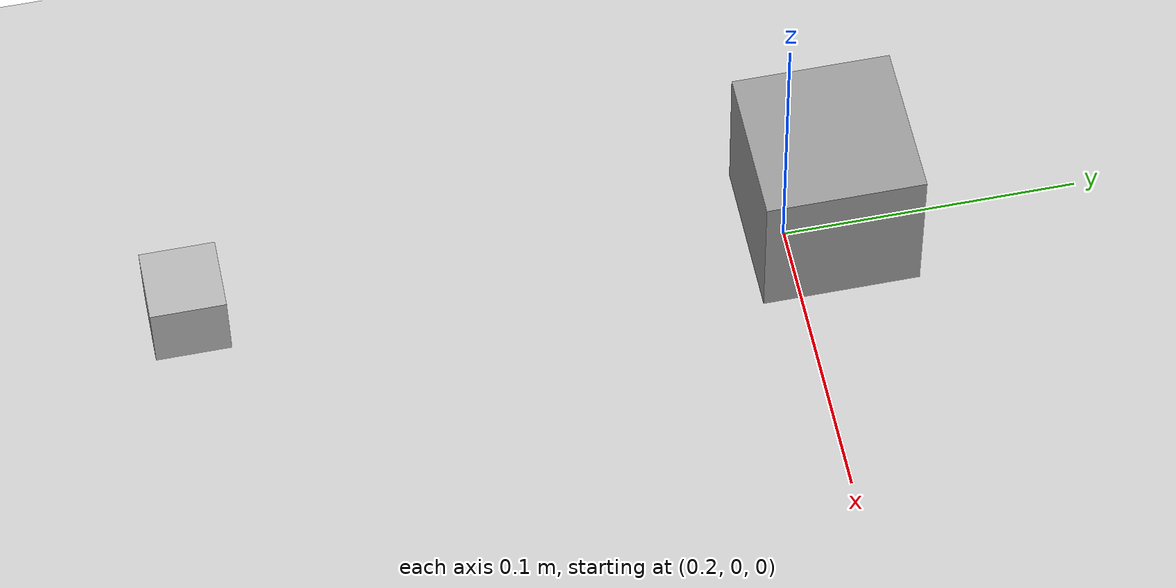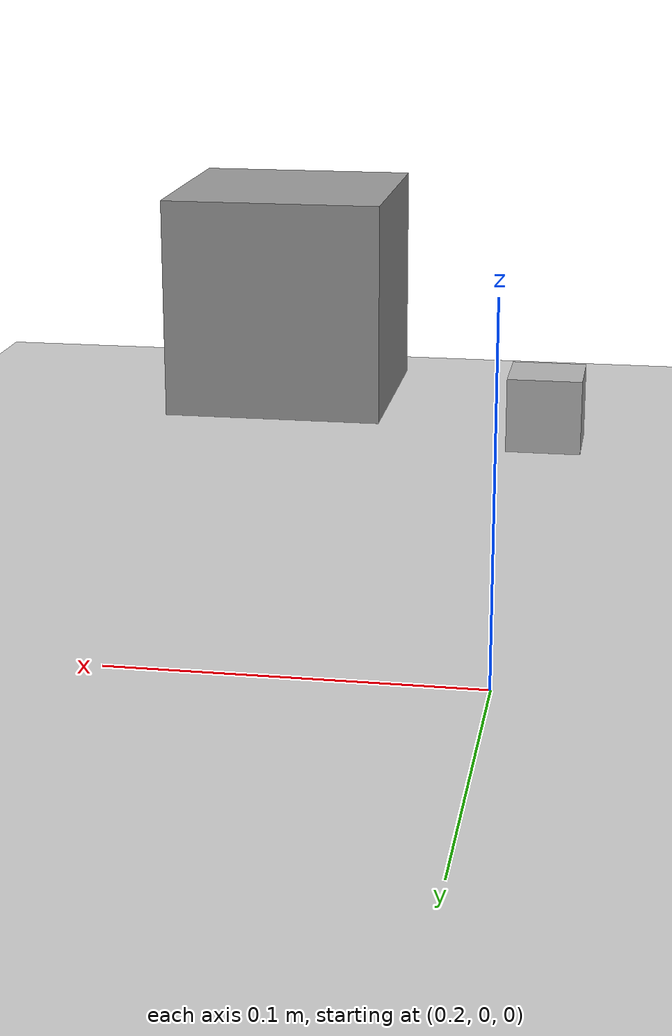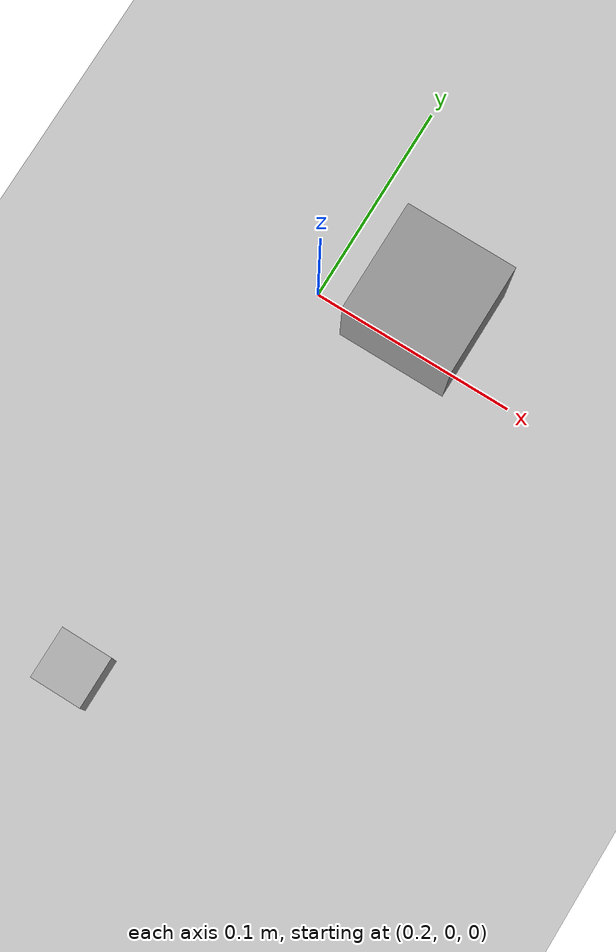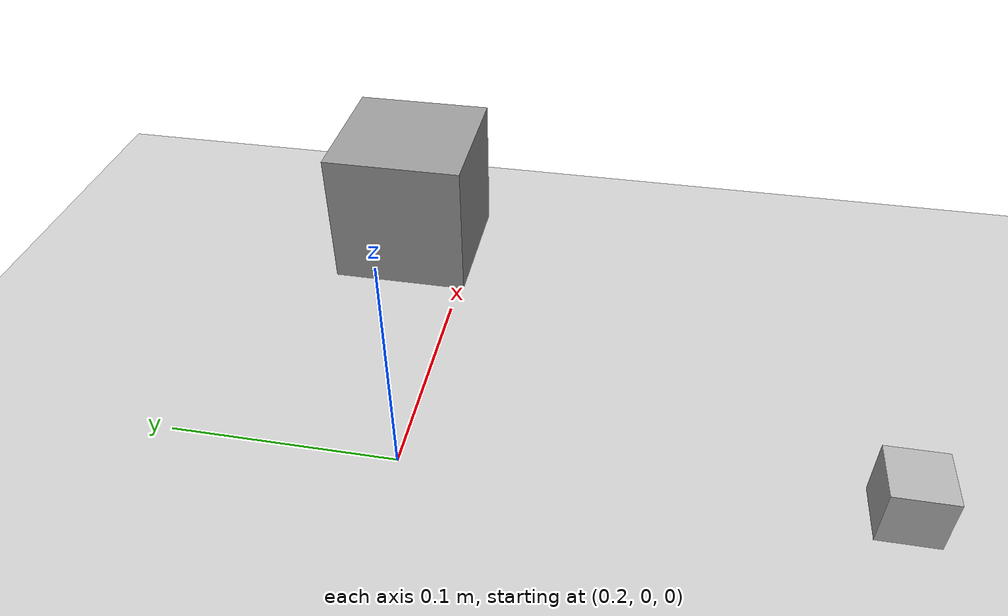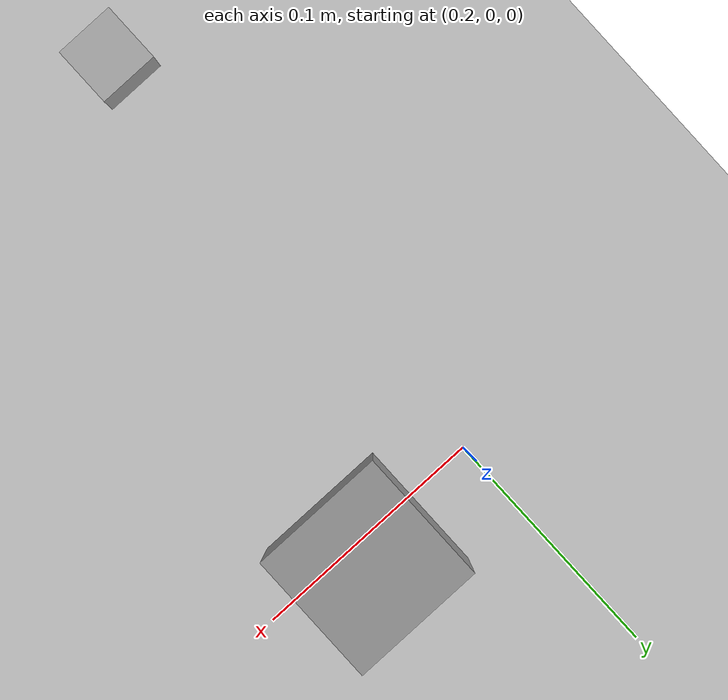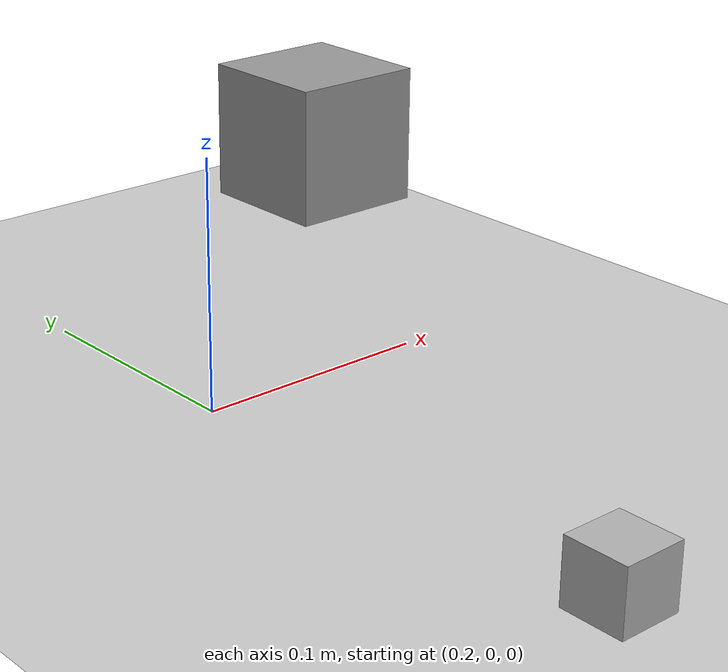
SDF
<sdf version="1.4">
  <world name="default">

    <scene>
      <ambient>0.4 0.4 0.4 1</ambient>
      <background>0.7 0.7 0.7 1</background>
      <shadows>true</shadows>
    </scene>

    <!-- A global light source -->
    <include>
      <uri>model://sun</uri>
    </include>

    <!-- A ground plane -->
    <include>
      <uri>model://ground_plane</uri>
    </include>

    <physics type="ode">
      <real_time_update_rate>1000.0</real_time_update_rate>
      <max_step_size>0.001</max_step_size>
      <real_time_factor>1</real_time_factor>
      <ode>
        <solver>
          <type>quick</type>
          <iters>150</iters>
          <precon_iters>0</precon_iters>
          <sor>1.400000</sor>
          <use_dynamic_moi_rescaling>1</use_dynamic_moi_rescaling>
        </solver>
        <constraints>
          <cfm>0.00001</cfm>
          <erp>0.2</erp>
          <contact_max_correcting_vel>2000.000000</contact_max_correcting_vel>
          <contact_surface_layer>0.01000</contact_surface_layer>
        </constraints>
      </ode>
    </physics>

    <gui fullscreen='0'>
      <camera name='user_camera'>
        <pose> 2.0 -2.0 1.2 0.0 0.275643 2.356190 </pose>
        <view_controller>orbit</view_controller>
      </camera>
    </gui>

    <include>
      <pose>0.25 0.0 0.10 0 0 0</pose>
      <uri>model://obstacle</uri>
    </include>

    <include>
      <pose>0.2 -0.2 0.02 0 0 0</pose>
      <uri>model://ar_box</uri>
    </include>

  </world>

</sdf>

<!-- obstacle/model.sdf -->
<sdf version='1.6'>
  <model name='obstacle'>
    <link name='link'>
      <inertial>
        <mass>1</mass>
        <inertia>
          <ixx>0.166667</ixx>
          <ixy>0</ixy>
          <ixz>0</ixz>
          <iyy>0.166667</iyy>
          <iyz>0</iyz>
          <izz>0.166667</izz>
        </inertia>
        <pose frame=''>0 0 0 0 -0 0</pose>
      </inertial>
      <self_collide>0</self_collide>
      <enable_wind>0</enable_wind>
      <kinematic>0</kinematic>
      <pose frame=''>0 0 0 0 -0 0</pose>
      <gravity>1</gravity>
      <visual name='visual'>
        <geometry>
          <box>
            <size>0.05 0.05 0.05</size>
          </box>
        </geometry>
        <material>
          <script>
            <name>Gazebo/Grey</name>
            <uri>file://media/materials/scripts/gazebo.material</uri>
          </script>
          <shader type='vertex'>
            <normal_map>__default__</normal_map>
          </shader>
          <ambient>0.3 0.3 0.3 1</ambient>
          <diffuse>0.7 0.7 0.7 1</diffuse>
          <specular>0.01 0.01 0.01 1</specular>
          <emissive>0 0 0 1</emissive>
        </material>
        <pose frame=''>0 0 0 0 -0 0</pose>
        <transparency>0</transparency>
        <cast_shadows>1</cast_shadows>
      </visual>
      <collision name='collision'>
        <laser_retro>0</laser_retro>
        <max_contacts>10</max_contacts>
        <pose frame=''>0 0 0 0 -0 0</pose>
        <geometry>
          <box>
            <size>0.05 0.05 0.05</size>
          </box>
        </geometry>
        <surface>
          <friction>
            <ode>
              <mu>1</mu>
              <mu2>1</mu2>
              <fdir1>0 0 0</fdir1>
              <slip1>0</slip1>
              <slip2>0</slip2>
            </ode>
            <torsional>
              <coefficient>1</coefficient>
              <patch_radius>0</patch_radius>
              <surface_radius>0</surface_radius>
              <use_patch_radius>1</use_patch_radius>
              <ode>
                <slip>0</slip>
              </ode>
            </torsional>
          </friction>
          <bounce>
            <restitution_coefficient>0</restitution_coefficient>
            <threshold>1e+06</threshold>
          </bounce>
          <contact>
            <collide_without_contact>0</collide_without_contact>
            <collide_without_contact_bitmask>1</collide_without_contact_bitmask>
            <collide_bitmask>1</collide_bitmask>
            <ode>
              <soft_cfm>0</soft_cfm>
              <soft_erp>0.2</soft_erp>
              <kp>1e+13</kp>
              <kd>1</kd>
              <max_vel>0.01</max_vel>
              <min_depth>0</min_depth>
            </ode>
            <bullet>
              <split_impulse>1</split_impulse>
              <split_impulse_penetration_threshold>-0.01</split_impulse_penetration_threshold>
              <soft_cfm>0</soft_cfm>
              <soft_erp>0.2</soft_erp>
              <kp>1e+13</kp>
              <kd>1</kd>
            </bullet>
          </contact>
        </surface>
      </collision>
    </link>
    <static>1</static>
    <allow_auto_disable>1</allow_auto_disable>
  </model>
</sdf>

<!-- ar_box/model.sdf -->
<sdf version='1.6'>
  <model name='ar_box'>
    <link name='link'>
      <inertial>
        <mass>1</mass>
        <inertia>
          <ixx>0.166667</ixx>
          <ixy>0</ixy>
          <ixz>0</ixz>
          <iyy>0.166667</iyy>
          <iyz>0</iyz>
          <izz>0.166667</izz>
        </inertia>
        <pose frame=''>0 0 0 0 -0 0</pose>
      </inertial>
      <self_collide>0</self_collide>
      <enable_wind>0</enable_wind>
      <kinematic>0</kinematic>
      <pose frame=''>0 0 0 0 -0 0</pose>
      <gravity>1</gravity>
      <visual name='visual'>
        <geometry>
          <box>
            <size>0.025 0.025 0.025</size>
          </box>
        </geometry>
        <material>
          <script>
            <uri>model://ar_box/materials/scripts</uri>
            <uri>model://ar_box/materials/textures</uri>
            <name>marker_box01</name>
          </script>
          <shader type='vertex'>
            <normal_map>__default__</normal_map>
          </shader>
          <ambient>0.3 0.3 0.3 1</ambient>
          <diffuse>0.7 0.7 0.7 1</diffuse>
          <specular>0.01 0.01 0.01 1</specular>
          <emissive>0 0 0 1</emissive>
        </material>
        <pose frame=''>0 0 0 0 -0 0</pose>
        <transparency>0</transparency>
        <cast_shadows>1</cast_shadows>
      </visual>
      <collision name='collision'>
        <laser_retro>0</laser_retro>
        <max_contacts>10</max_contacts>
        <pose frame=''>0 0 0 0 -0 0</pose>
        <geometry>
          <box>
            <size>0.025 0.025 0.025</size>
          </box>
        </geometry>
        <surface>
          <friction>
            <ode>
              <mu>1</mu>
              <mu2>1</mu2>
              <fdir1>0 0 0</fdir1>
              <slip1>0</slip1>
              <slip2>0</slip2>
            </ode>
            <torsional>
              <coefficient>1</coefficient>
              <patch_radius>0</patch_radius>
              <surface_radius>0</surface_radius>
              <use_patch_radius>1</use_patch_radius>
              <ode>
                <slip>0</slip>
              </ode>
            </torsional>
          </friction>
          <bounce>
            <restitution_coefficient>0</restitution_coefficient>
            <threshold>1e+06</threshold>
          </bounce>
          <contact>
            <collide_without_contact>0</collide_without_contact>
            <collide_without_contact_bitmask>1</collide_without_contact_bitmask>
            <collide_bitmask>1</collide_bitmask>
            <ode>
              <soft_cfm>0</soft_cfm>
              <soft_erp>0.2</soft_erp>
              <kp>1e+13</kp>
              <kd>1</kd>
              <max_vel>0.01</max_vel>
              <min_depth>0</min_depth>
            </ode>
            <bullet>
              <split_impulse>1</split_impulse>
              <split_impulse_penetration_threshold>-0.01</split_impulse_penetration_threshold>
              <soft_cfm>0</soft_cfm>
              <soft_erp>0.2</soft_erp>
              <kp>1e+13</kp>
              <kd>1</kd>
            </bullet>
          </contact>
        </surface>
      </collision>
    </link>
    <static>1</static>
    <allow_auto_disable>1</allow_auto_disable>
  </model>
</sdf>
